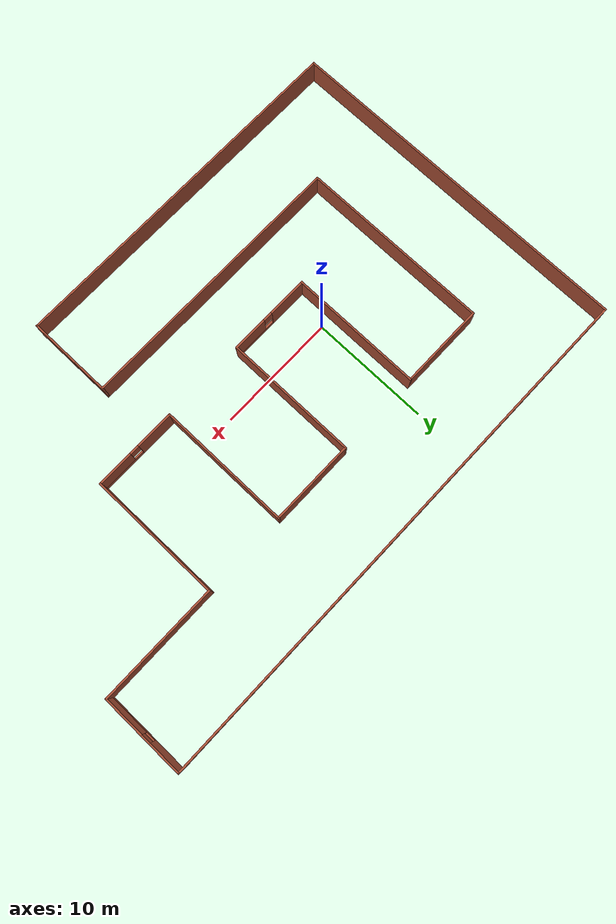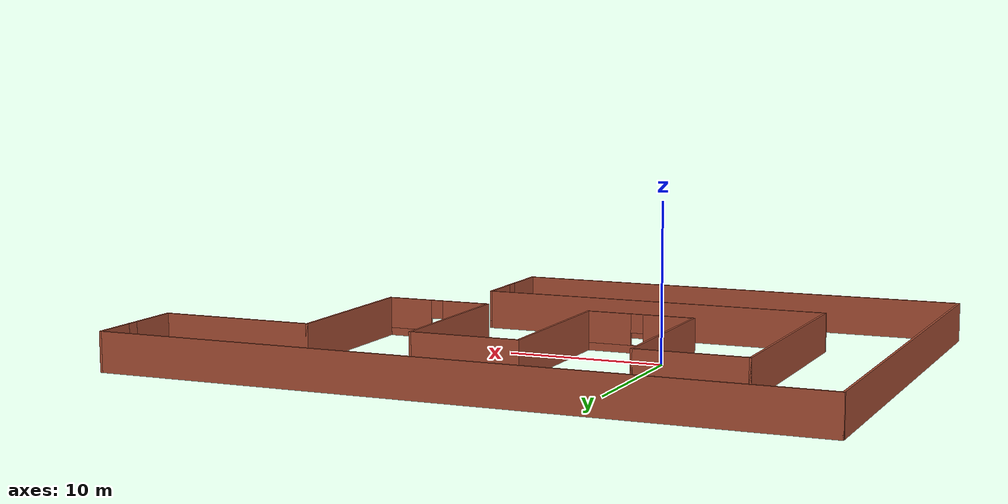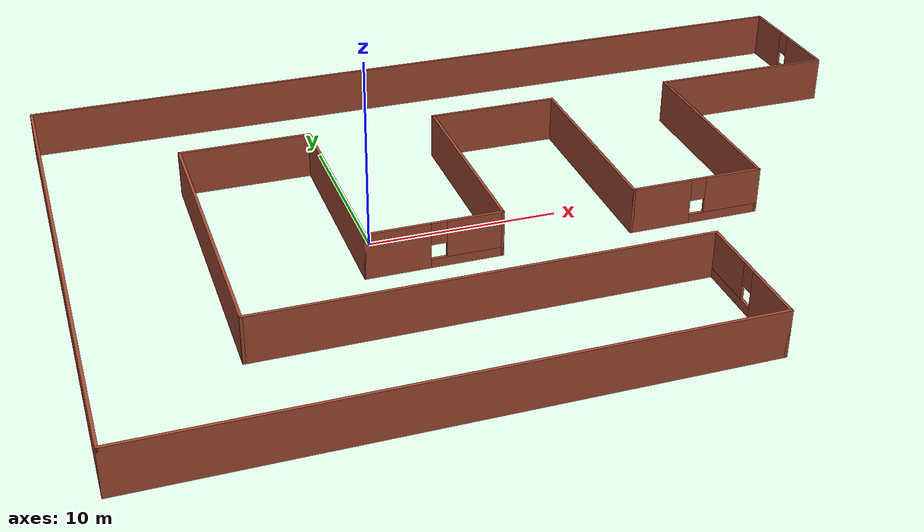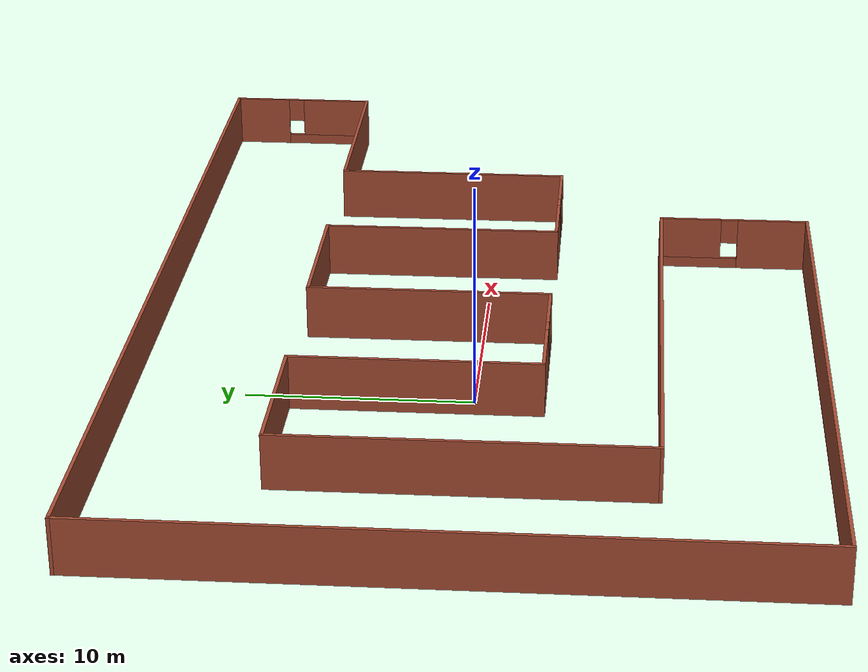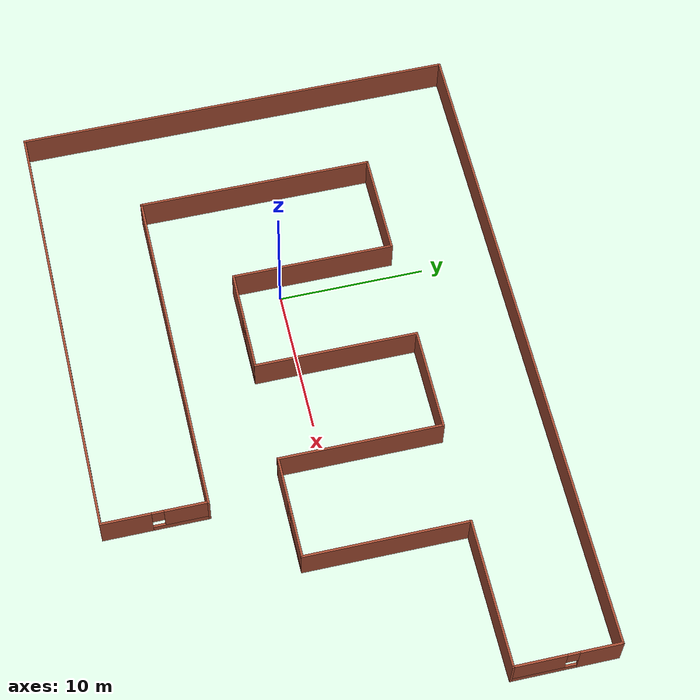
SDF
<?xml version='1.0'?>
<sdf version='1.6'>
  <model name='building'>
    <pose frame=''>7.5 0 0 0 -0 0</pose>
    <link name='Wall_0'>
      <collision name='Wall_0_Collision'>
        <geometry>
          <box>
            <size>30.15 0.15 2.5</size>
          </box>
        </geometry>
        <pose frame=''>0 0 1.25 0 -0 0</pose>
      </collision>
      <visual name='Wall_0_Visual'>
        <pose frame=''>0 0 1.25 0 -0 0</pose>
        <geometry>
          <box>
            <size>30.15 0.15 2.5</size>
          </box>
        </geometry>
        <material>
          <script>
            <uri>file://media/materials/scripts/gazebo.material</uri>
            <name>Gazebo/Bricks</name>
          </script>
          <ambient>1 1 1 1</ambient>
        </material>
        <meta>
          <layer>0</layer>
        </meta>
      </visual>
      <pose frame=''>-22.5 0 0 0 0 -1.5708</pose>
    </link>
    <link name='Wall_11'>
      <collision name='Wall_11_Collision'>
        <geometry>
          <box>
            <size>7.15 0.15 2.5</size>
          </box>
        </geometry>
        <pose frame=''>0 0 1.25 0 -0 0</pose>
      </collision>
      <visual name='Wall_11_Visual'>
        <pose frame=''>0 0 1.25 0 -0 0</pose>
        <geometry>
          <box>
            <size>7.15 0.15 2.5</size>
          </box>
        </geometry>
        <material>
          <script>
            <uri>file://media/materials/scripts/gazebo.material</uri>
            <name>Gazebo/Bricks</name>
          </script>
          <ambient>1 1 1 1</ambient>
        </material>
        <meta>
          <layer>0</layer>
        </meta>
      </visual>
      <pose frame=''>-12 8 0 0 -0 0</pose>
    </link>
    <link name='Wall_13'>
      <collision name='Wall_13_Collision'>
        <geometry>
          <box>
            <size>11.15 0.15 2.5</size>
          </box>
        </geometry>
        <pose frame=''>0 0 1.25 0 -0 0</pose>
      </collision>
      <visual name='Wall_13_Visual'>
        <pose frame=''>0 0 1.25 0 -0 0</pose>
        <geometry>
          <box>
            <size>11.15 0.15 2.5</size>
          </box>
        </geometry>
        <material>
          <script>
            <uri>file://media/materials/scripts/gazebo.material</uri>
            <name>Gazebo/Bricks</name>
          </script>
          <ambient>1 1 1 1</ambient>
        </material>
        <meta>
          <layer>0</layer>
        </meta>
      </visual>
      <pose frame=''>-8.5 2.5 0 0 0 -1.5708</pose>
    </link>
    <link name='Wall_15'>
      <pose frame=''>-5 -3 0 0 -0 0</pose>
      <visual name='Wall_15_Visual_0'>
        <pose frame=''>-1.88147 0 1.25 0 -0 0</pose>
        <geometry>
          <box>
            <size>3.38706 0.15 2.5</size>
          </box>
        </geometry>
        <material>
          <script>
            <uri>file://media/materials/scripts/gazebo.material</uri>
            <name>Gazebo/Bricks</name>
          </script>
          <ambient>1 1 1 1</ambient>
        </material>
        <meta>
          <layer>0</layer>
        </meta>
      </visual>
      <collision name='Wall_15_Collision_0'>
        <geometry>
          <box>
            <size>3.38706 0.15 2.5</size>
          </box>
        </geometry>
        <pose frame=''>-1.88147 0 1.25 0 -0 0</pose>
      </collision>
      <visual name='Wall_15_Visual_1'>
        <pose frame=''>1.69353 0 0.25 0 -0 0</pose>
        <geometry>
          <box>
            <size>3.76294 0.15 0.5</size>
          </box>
        </geometry>
        <material>
          <script>
            <uri>file://media/materials/scripts/gazebo.material</uri>
            <name>Gazebo/Bricks</name>
          </script>
          <ambient>1 1 1 1</ambient>
        </material>
        <meta>
          <layer>0</layer>
        </meta>
      </visual>
      <collision name='Wall_15_Collision_1'>
        <geometry>
          <box>
            <size>3.76294 0.15 0.5</size>
          </box>
        </geometry>
        <pose frame=''>1.69353 0 0.25 0 -0 0</pose>
      </collision>
      <visual name='Wall_15_Visual_2'>
        <pose frame=''>2.09353 0 1.5 0 -0 0</pose>
        <geometry>
          <box>
            <size>2.96294 0.15 2</size>
          </box>
        </geometry>
        <material>
          <script>
            <uri>file://media/materials/scripts/gazebo.material</uri>
            <name>Gazebo/Bricks</name>
          </script>
          <ambient>1 1 1 1</ambient>
        </material>
        <meta>
          <layer>0</layer>
        </meta>
      </visual>
      <collision name='Wall_15_Collision_2'>
        <geometry>
          <box>
            <size>2.96294 0.15 2</size>
          </box>
        </geometry>
        <pose frame=''>2.09353 0 1.5 0 -0 0</pose>
      </collision>
      <visual name='Wall_15_Visual_3'>
        <pose frame=''>0.212058 0 1.9 0 -0 0</pose>
        <geometry>
          <box>
            <size>0.8 0.15 1.2</size>
          </box>
        </geometry>
        <material>
          <script>
            <uri>file://media/materials/scripts/gazebo.material</uri>
            <name>Gazebo/Bricks</name>
          </script>
          <ambient>1 1 1 1</ambient>
        </material>
        <meta>
          <layer>0</layer>
        </meta>
      </visual>
      <collision name='Wall_15_Collision_3'>
        <geometry>
          <box>
            <size>0.8 0.15 1.2</size>
          </box>
        </geometry>
        <pose frame=''>0.212058 0 1.9 0 -0 0</pose>
      </collision>
    </link>
    <link name='Wall_17'>
      <collision name='Wall_17_Collision'>
        <geometry>
          <box>
            <size>11.15 0.15 2.5</size>
          </box>
        </geometry>
        <pose frame=''>0 0 1.25 0 -0 0</pose>
      </collision>
      <visual name='Wall_17_Visual'>
        <pose frame=''>0 0 1.25 0 -0 0</pose>
        <geometry>
          <box>
            <size>11.15 0.15 2.5</size>
          </box>
        </geometry>
        <material>
          <script>
            <uri>file://media/materials/scripts/gazebo.material</uri>
            <name>Gazebo/Bricks</name>
          </script>
          <ambient>1 1 1 1</ambient>
        </material>
        <meta>
          <layer>0</layer>
        </meta>
      </visual>
      <pose frame=''>-1.5 2.5 0 0 -0 1.5708</pose>
    </link>
    <link name='Wall_19'>
      <collision name='Wall_19_Collision'>
        <geometry>
          <box>
            <size>7.15 0.15 2.5</size>
          </box>
        </geometry>
        <pose frame=''>0 0 1.25 0 -0 0</pose>
      </collision>
      <visual name='Wall_19_Visual'>
        <pose frame=''>0 0 1.25 0 -0 0</pose>
        <geometry>
          <box>
            <size>7.15 0.15 2.5</size>
          </box>
        </geometry>
        <material>
          <script>
            <uri>file://media/materials/scripts/gazebo.material</uri>
            <name>Gazebo/Bricks</name>
          </script>
          <ambient>1 1 1 1</ambient>
        </material>
        <meta>
          <layer>0</layer>
        </meta>
      </visual>
      <pose frame=''>2 8 0 0 -0 0</pose>
    </link>
    <link name='Wall_2'>
      <collision name='Wall_2_Collision'>
        <geometry>
          <box>
            <size>30.15 0.15 2.5</size>
          </box>
        </geometry>
        <pose frame=''>0 0 1.25 0 -0 0</pose>
      </collision>
      <visual name='Wall_2_Visual'>
        <pose frame=''>0 0 1.25 0 -0 0</pose>
        <geometry>
          <box>
            <size>30.15 0.15 2.5</size>
          </box>
        </geometry>
        <material>
          <script>
            <uri>file://media/materials/scripts/gazebo.material</uri>
            <name>Gazebo/Bricks</name>
          </script>
          <ambient>1 1 1 1</ambient>
        </material>
        <meta>
          <layer>0</layer>
        </meta>
      </visual>
      <pose frame=''>-7.5 -15 0 0 -0 0</pose>
    </link>
    <link name='Wall_21'>
      <collision name='Wall_21_Collision'>
        <geometry>
          <box>
            <size>11.15 0.15 2.5</size>
          </box>
        </geometry>
        <pose frame=''>0 0 1.25 0 -0 0</pose>
      </collision>
      <visual name='Wall_21_Visual'>
        <pose frame=''>0 0 1.25 0 -0 0</pose>
        <geometry>
          <box>
            <size>11.15 0.15 2.5</size>
          </box>
        </geometry>
        <material>
          <script>
            <uri>file://media/materials/scripts/gazebo.material</uri>
            <name>Gazebo/Bricks</name>
          </script>
          <ambient>1 1 1 1</ambient>
        </material>
        <meta>
          <layer>0</layer>
        </meta>
      </visual>
      <pose frame=''>5.5 2.5 0 0 0 -1.5708</pose>
    </link>
    <link name='Wall_23'>
      <pose frame=''>9 -3 0 0 -0 0</pose>
      <visual name='Wall_23_Visual_0'>
        <pose frame=''>-1.94046 0 1.25 0 -0 0</pose>
        <geometry>
          <box>
            <size>3.26909 0.15 2.5</size>
          </box>
        </geometry>
        <material>
          <script>
            <uri>file://media/materials/scripts/gazebo.material</uri>
            <name>Gazebo/Bricks</name>
          </script>
          <ambient>1 1 1 1</ambient>
        </material>
        <meta>
          <layer>0</layer>
        </meta>
      </visual>
      <collision name='Wall_23_Collision_0'>
        <geometry>
          <box>
            <size>3.26909 0.15 2.5</size>
          </box>
        </geometry>
        <pose frame=''>-1.94046 0 1.25 0 -0 0</pose>
      </collision>
      <visual name='Wall_23_Visual_1'>
        <pose frame=''>1.63454 0 0.25 0 -0 0</pose>
        <geometry>
          <box>
            <size>3.88091 0.15 0.5</size>
          </box>
        </geometry>
        <material>
          <script>
            <uri>file://media/materials/scripts/gazebo.material</uri>
            <name>Gazebo/Bricks</name>
          </script>
          <ambient>1 1 1 1</ambient>
        </material>
        <meta>
          <layer>0</layer>
        </meta>
      </visual>
      <collision name='Wall_23_Collision_1'>
        <geometry>
          <box>
            <size>3.88091 0.15 0.5</size>
          </box>
        </geometry>
        <pose frame=''>1.63454 0 0.25 0 -0 0</pose>
      </collision>
      <visual name='Wall_23_Visual_2'>
        <pose frame=''>2.03454 0 1.5 0 -0 0</pose>
        <geometry>
          <box>
            <size>3.08091 0.15 2</size>
          </box>
        </geometry>
        <material>
          <script>
            <uri>file://media/materials/scripts/gazebo.material</uri>
            <name>Gazebo/Bricks</name>
          </script>
          <ambient>1 1 1 1</ambient>
        </material>
        <meta>
          <layer>0</layer>
        </meta>
      </visual>
      <collision name='Wall_23_Collision_2'>
        <geometry>
          <box>
            <size>3.08091 0.15 2</size>
          </box>
        </geometry>
        <pose frame=''>2.03454 0 1.5 0 -0 0</pose>
      </collision>
      <visual name='Wall_23_Visual_3'>
        <pose frame=''>0.094088 0 1.9 0 -0 0</pose>
        <geometry>
          <box>
            <size>0.8 0.15 1.2</size>
          </box>
        </geometry>
        <material>
          <script>
            <uri>file://media/materials/scripts/gazebo.material</uri>
            <name>Gazebo/Bricks</name>
          </script>
          <ambient>1 1 1 1</ambient>
        </material>
        <meta>
          <layer>0</layer>
        </meta>
      </visual>
      <collision name='Wall_23_Collision_3'>
        <geometry>
          <box>
            <size>0.8 0.15 1.2</size>
          </box>
        </geometry>
        <pose frame=''>0.094088 0 1.9 0 -0 0</pose>
      </collision>
    </link>
    <link name='Wall_25'>
      <collision name='Wall_25_Collision'>
        <geometry>
          <box>
            <size>11.15 0.15 2.5</size>
          </box>
        </geometry>
        <pose frame=''>0 0 1.25 0 -0 0</pose>
      </collision>
      <visual name='Wall_25_Visual'>
        <pose frame=''>0 0 1.25 0 -0 0</pose>
        <geometry>
          <box>
            <size>11.15 0.15 2.5</size>
          </box>
        </geometry>
        <material>
          <script>
            <uri>file://media/materials/scripts/gazebo.material</uri>
            <name>Gazebo/Bricks</name>
          </script>
          <ambient>1 1 1 1</ambient>
        </material>
        <meta>
          <layer>0</layer>
        </meta>
      </visual>
      <pose frame=''>12.5 2.5 0 0 -0 1.5708</pose>
    </link>
    <link name='Wall_27'>
      <collision name='Wall_27_Collision'>
        <geometry>
          <box>
            <size>10.15 0.15 2.5</size>
          </box>
        </geometry>
        <pose frame=''>0 0 1.25 0 -0 0</pose>
      </collision>
      <visual name='Wall_27_Visual'>
        <pose frame=''>0 0 1.25 0 -0 0</pose>
        <geometry>
          <box>
            <size>10.15 0.15 2.5</size>
          </box>
        </geometry>
        <material>
          <script>
            <uri>file://media/materials/scripts/gazebo.material</uri>
            <name>Gazebo/Bricks</name>
          </script>
          <ambient>1 1 1 1</ambient>
        </material>
        <meta>
          <layer>0</layer>
        </meta>
      </visual>
      <pose frame=''>17.5 8 0 0 -0 0</pose>
    </link>
    <link name='Wall_29'>
      <pose frame=''>22.5 11.5 0 0 0 -1.5708</pose>
      <visual name='Wall_29_Visual_0'>
        <pose frame=''>-2.15998 0 1.25 0 -0 0</pose>
        <geometry>
          <box>
            <size>2.83005 0.15 2.5</size>
          </box>
        </geometry>
        <material>
          <script>
            <uri>file://media/materials/scripts/gazebo.material</uri>
            <name>Gazebo/Bricks</name>
          </script>
          <ambient>1 1 1 1</ambient>
        </material>
        <meta>
          <layer>0</layer>
        </meta>
      </visual>
      <collision name='Wall_29_Collision_0'>
        <geometry>
          <box>
            <size>2.83005 0.15 2.5</size>
          </box>
        </geometry>
        <pose frame=''>-2.15998 0 1.25 0 -0 0</pose>
      </collision>
      <visual name='Wall_29_Visual_1'>
        <pose frame=''>1.41502 0 0.25 0 -0 0</pose>
        <geometry>
          <box>
            <size>4.31995 0.15 0.5</size>
          </box>
        </geometry>
        <material>
          <script>
            <uri>file://media/materials/scripts/gazebo.material</uri>
            <name>Gazebo/Bricks</name>
          </script>
          <ambient>1 1 1 1</ambient>
        </material>
        <meta>
          <layer>0</layer>
        </meta>
      </visual>
      <collision name='Wall_29_Collision_1'>
        <geometry>
          <box>
            <size>4.31995 0.15 0.5</size>
          </box>
        </geometry>
        <pose frame=''>1.41502 0 0.25 0 -0 0</pose>
      </collision>
      <visual name='Wall_29_Visual_2'>
        <pose frame=''>1.81502 0 1.5 0 -0 0</pose>
        <geometry>
          <box>
            <size>3.51995 0.15 2</size>
          </box>
        </geometry>
        <material>
          <script>
            <uri>file://media/materials/scripts/gazebo.material</uri>
            <name>Gazebo/Bricks</name>
          </script>
          <ambient>1 1 1 1</ambient>
        </material>
        <meta>
          <layer>0</layer>
        </meta>
      </visual>
      <collision name='Wall_29_Collision_2'>
        <geometry>
          <box>
            <size>3.51995 0.15 2</size>
          </box>
        </geometry>
        <pose frame=''>1.81502 0 1.5 0 -0 0</pose>
      </collision>
      <visual name='Wall_29_Visual_3'>
        <pose frame=''>-0.344954 0 1.9 0 -0 0</pose>
        <geometry>
          <box>
            <size>0.8 0.15 1.2</size>
          </box>
        </geometry>
        <material>
          <script>
            <uri>file://media/materials/scripts/gazebo.material</uri>
            <name>Gazebo/Bricks</name>
          </script>
          <ambient>1 1 1 1</ambient>
        </material>
        <meta>
          <layer>0</layer>
        </meta>
      </visual>
      <collision name='Wall_29_Collision_3'>
        <geometry>
          <box>
            <size>0.8 0.15 1.2</size>
          </box>
        </geometry>
        <pose frame=''>-0.344954 0 1.9 0 -0 0</pose>
      </collision>
    </link>
    <link name='Wall_4'>
      <collision name='Wall_4_Collision'>
        <geometry>
          <box>
            <size>45.15 0.15 2.5</size>
          </box>
        </geometry>
        <pose frame=''>0 0 1.25 0 -0 0</pose>
      </collision>
      <visual name='Wall_4_Visual'>
        <pose frame=''>0 0 1.25 0 -0 0</pose>
        <geometry>
          <box>
            <size>45.15 0.15 2.5</size>
          </box>
        </geometry>
        <material>
          <script>
            <uri>file://media/materials/scripts/gazebo.material</uri>
            <name>Gazebo/Bricks</name>
          </script>
          <ambient>1 1 1 1</ambient>
        </material>
        <meta>
          <layer>0</layer>
        </meta>
      </visual>
      <pose frame=''>0 15 0 0 -0 0</pose>
    </link>
    <link name='Wall_6'>
      <pose frame=''>7.5 -11.5 0 0 -0 1.5708</pose>
      <visual name='Wall_6_Visual_0'>
        <pose frame=''>-1.88338 0 1.25 0 -0 0</pose>
        <geometry>
          <box>
            <size>3.38324 0.15 2.5</size>
          </box>
        </geometry>
        <material>
          <script>
            <uri>file://media/materials/scripts/gazebo.material</uri>
            <name>Gazebo/Bricks</name>
          </script>
          <ambient>1 1 1 1</ambient>
        </material>
        <meta>
          <layer>0</layer>
        </meta>
      </visual>
      <collision name='Wall_6_Collision_0'>
        <geometry>
          <box>
            <size>3.38324 0.15 2.5</size>
          </box>
        </geometry>
        <pose frame=''>-1.88338 0 1.25 0 -0 0</pose>
      </collision>
      <visual name='Wall_6_Visual_1'>
        <pose frame=''>1.69162 0 0.25 0 -0 0</pose>
        <geometry>
          <box>
            <size>3.76676 0.15 0.5</size>
          </box>
        </geometry>
        <material>
          <script>
            <uri>file://media/materials/scripts/gazebo.material</uri>
            <name>Gazebo/Bricks</name>
          </script>
          <ambient>1 1 1 1</ambient>
        </material>
        <meta>
          <layer>0</layer>
        </meta>
      </visual>
      <collision name='Wall_6_Collision_1'>
        <geometry>
          <box>
            <size>3.76676 0.15 0.5</size>
          </box>
        </geometry>
        <pose frame=''>1.69162 0 0.25 0 -0 0</pose>
      </collision>
      <visual name='Wall_6_Visual_2'>
        <pose frame=''>2.09162 0 1.5 0 -0 0</pose>
        <geometry>
          <box>
            <size>2.96676 0.15 2</size>
          </box>
        </geometry>
        <material>
          <script>
            <uri>file://media/materials/scripts/gazebo.material</uri>
            <name>Gazebo/Bricks</name>
          </script>
          <ambient>1 1 1 1</ambient>
        </material>
        <meta>
          <layer>0</layer>
        </meta>
      </visual>
      <collision name='Wall_6_Collision_2'>
        <geometry>
          <box>
            <size>2.96676 0.15 2</size>
          </box>
        </geometry>
        <pose frame=''>2.09162 0 1.5 0 -0 0</pose>
      </collision>
      <visual name='Wall_6_Visual_3'>
        <pose frame=''>0.208237 0 1.9 0 -0 0</pose>
        <geometry>
          <box>
            <size>0.8 0.15 1.2</size>
          </box>
        </geometry>
        <material>
          <script>
            <uri>file://media/materials/scripts/gazebo.material</uri>
            <name>Gazebo/Bricks</name>
          </script>
          <ambient>1 1 1 1</ambient>
        </material>
        <meta>
          <layer>0</layer>
        </meta>
      </visual>
      <collision name='Wall_6_Collision_3'>
        <geometry>
          <box>
            <size>0.8 0.15 1.2</size>
          </box>
        </geometry>
        <pose frame=''>0.208237 0 1.9 0 -0 0</pose>
      </collision>
    </link>
    <link name='Wall_7'>
      <collision name='Wall_7_Collision'>
        <geometry>
          <box>
            <size>23.15 0.15 2.5</size>
          </box>
        </geometry>
        <pose frame=''>0 0 1.25 0 -0 0</pose>
      </collision>
      <visual name='Wall_7_Visual'>
        <pose frame=''>0 0 1.25 0 -0 0</pose>
        <geometry>
          <box>
            <size>23.15 0.15 2.5</size>
          </box>
        </geometry>
        <material>
          <script>
            <uri>file://media/materials/scripts/gazebo.material</uri>
            <name>Gazebo/Bricks</name>
          </script>
          <ambient>1 1 1 1</ambient>
        </material>
        <meta>
          <layer>0</layer>
        </meta>
      </visual>
      <pose frame=''>-4 -8 0 0 -0 3.14159</pose>
    </link>
    <link name='Wall_9'>
      <collision name='Wall_9_Collision'>
        <geometry>
          <box>
            <size>16.15 0.15 2.5</size>
          </box>
        </geometry>
        <pose frame=''>0 0 1.25 0 -0 0</pose>
      </collision>
      <visual name='Wall_9_Visual'>
        <pose frame=''>0 0 1.25 0 -0 0</pose>
        <geometry>
          <box>
            <size>16.15 0.15 2.5</size>
          </box>
        </geometry>
        <material>
          <script>
            <uri>file://media/materials/scripts/gazebo.material</uri>
            <name>Gazebo/Bricks</name>
          </script>
          <ambient>1 1 1 1</ambient>
        </material>
        <meta>
          <layer>0</layer>
        </meta>
      </visual>
      <pose frame=''>-15.5 0 0 0 -0 1.5708</pose>
    </link>
    <static>1</static>
  </model>
</sdf>
